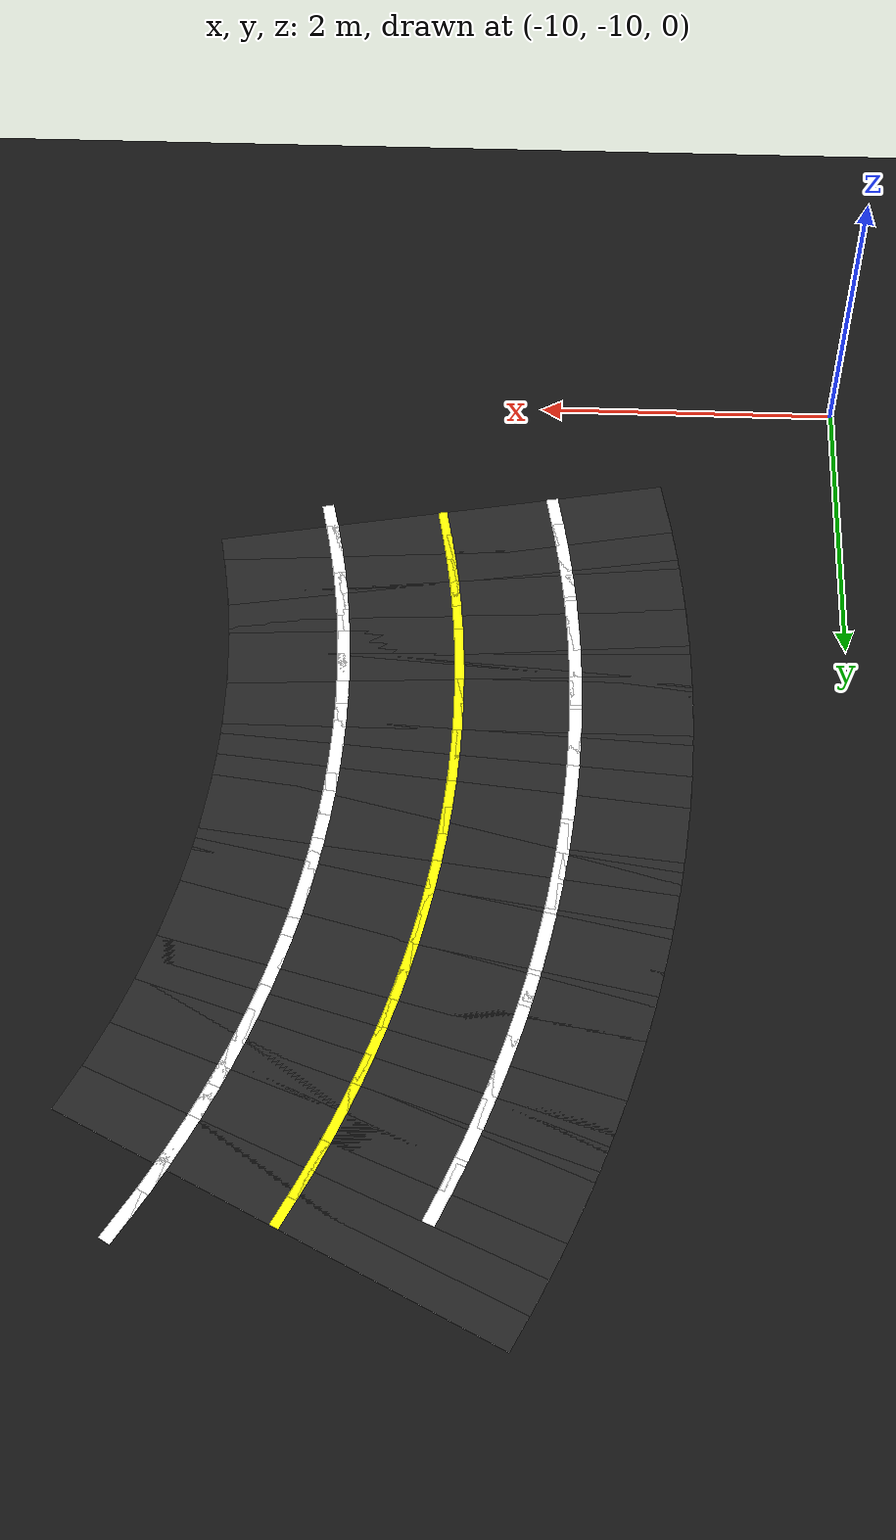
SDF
<sdf version="1.6">
 <world name="figure8_world">
  <model name="ground_plane">
   <static>true</static>
   <link name="link">
    <collision name="collision">
     <geometry><plane><normal>0 0 1</normal><size>120 120</size></plane></geometry>
    </collision>
    <visual name="visual">
     <geometry><plane><normal>0 0 1</normal><size>120 120</size></plane></geometry>
     <material><ambient>0.08 0.08 0.08 1</ambient><diffuse>0.08 0.08 0.08 1</diffuse></material>
    </visual>
   </link>
  </model>
  <model name="seg_01206">
   <static>true</static>
   <pose>-6.6025 -8.9034 0.0030 0 0 1.7802</pose>
   <link name="link">
    <collision name="collision"><geometry><box><size>0.4000 0.0800 0.002</size></box></geometry></collision>
    <visual name="visual">
     <geometry><box><size>0.4000 0.0800 0.002</size></box></geometry>
     <material><ambient>1 1 1 1</ambient><diffuse>1 1 1 1</diffuse></material>
    </visual>
   </link>
  </model>
  <model name="seg_01208">
   <static>true</static>
   <pose>-7.3744 -8.8668 0.0010 0 0 1.7541</pose>
   <link name="link">
    <collision name="collision"><geometry><box><size>0.4000 3.0000 0.002</size></box></geometry></collision>
    <visual name="visual">
     <geometry><box><size>0.4000 3.0000 0.002</size></box></geometry>
     <material><ambient>0.14 0.14 0.14 1</ambient><diffuse>0.14 0.14 0.14 1</diffuse></material>
    </visual>
   </link>
  </model>
  <model name="seg_01209">
   <static>true</static>
   <pose>-8.1119 -9.0034 0.0030 0 0 1.7541</pose>
   <link name="link">
    <collision name="collision"><geometry><box><size>0.4000 0.0800 0.002</size></box></geometry></collision>
    <visual name="visual">
     <geometry><box><size>0.4000 0.0800 0.002</size></box></geometry>
     <material><ambient>1 1 1 1</ambient><diffuse>1 1 1 1</diffuse></material>
    </visual>
   </link>
  </model>
  <model name="seg_01210">
   <static>true</static>
   <pose>-6.6370 -8.7301 0.0030 0 0 1.7541</pose>
   <link name="link">
    <collision name="collision"><geometry><box><size>0.4000 0.0800 0.002</size></box></geometry></collision>
    <visual name="visual">
     <geometry><box><size>0.4000 0.0800 0.002</size></box></geometry>
     <material><ambient>1 1 1 1</ambient><diffuse>1 1 1 1</diffuse></material>
    </visual>
   </link>
  </model>
  <model name="seg_01211">
   <static>true</static>
   <pose>-7.3744 -8.8668 0.0030 0 0 1.7541</pose>
   <link name="link">
    <collision name="collision"><geometry><box><size>0.4000 0.0600 0.002</size></box></geometry></collision>
    <visual name="visual">
     <geometry><box><size>0.4000 0.0600 0.002</size></box></geometry>
     <material><ambient>1 1 0 1</ambient><diffuse>1 1 0 1</diffuse></material>
    </visual>
   </link>
  </model>
  <model name="seg_01212">
   <static>true</static>
   <pose>-7.4077 -8.6733 0.0010 0 0 1.7279</pose>
   <link name="link">
    <collision name="collision"><geometry><box><size>0.4000 3.0000 0.002</size></box></geometry></collision>
    <visual name="visual">
     <geometry><box><size>0.4000 3.0000 0.002</size></box></geometry>
     <material><ambient>0.14 0.14 0.14 1</ambient><diffuse>0.14 0.14 0.14 1</diffuse></material>
    </visual>
   </link>
  </model>
  <model name="seg_01213">
   <static>true</static>
   <pose>-8.1484 -8.7906 0.0030 0 0 1.7279</pose>
   <link name="link">
    <collision name="collision"><geometry><box><size>0.4000 0.0800 0.002</size></box></geometry></collision>
    <visual name="visual">
     <geometry><box><size>0.4000 0.0800 0.002</size></box></geometry>
     <material><ambient>1 1 1 1</ambient><diffuse>1 1 1 1</diffuse></material>
    </visual>
   </link>
  </model>
  <model name="seg_01214">
   <static>true</static>
   <pose>-6.6669 -8.5559 0.0030 0 0 1.7279</pose>
   <link name="link">
    <collision name="collision"><geometry><box><size>0.4000 0.0800 0.002</size></box></geometry></collision>
    <visual name="visual">
     <geometry><box><size>0.4000 0.0800 0.002</size></box></geometry>
     <material><ambient>1 1 1 1</ambient><diffuse>1 1 1 1</diffuse></material>
    </visual>
   </link>
  </model>
  <model name="seg_01215">
   <static>true</static>
   <pose>-7.4077 -8.6733 0.0030 0 0 1.7279</pose>
   <link name="link">
    <collision name="collision"><geometry><box><size>0.4000 0.0600 0.002</size></box></geometry></collision>
    <visual name="visual">
     <geometry><box><size>0.4000 0.0600 0.002</size></box></geometry>
     <material><ambient>1 1 0 1</ambient><diffuse>1 1 0 1</diffuse></material>
    </visual>
   </link>
  </model>
  <model name="seg_01216">
   <static>true</static>
   <pose>-7.4358 -8.4789 0.0010 0 0 1.7017</pose>
   <link name="link">
    <collision name="collision"><geometry><box><size>0.4000 3.0000 0.002</size></box></geometry></collision>
    <visual name="visual">
     <geometry><box><size>0.4000 3.0000 0.002</size></box></geometry>
     <material><ambient>0.14 0.14 0.14 1</ambient><diffuse>0.14 0.14 0.14 1</diffuse></material>
    </visual>
   </link>
  </model>
  <model name="seg_01217">
   <static>true</static>
   <pose>-8.1794 -8.5768 0.0030 0 0 1.7017</pose>
   <link name="link">
    <collision name="collision"><geometry><box><size>0.4000 0.0800 0.002</size></box></geometry></collision>
    <visual name="visual">
     <geometry><box><size>0.4000 0.0800 0.002</size></box></geometry>
     <material><ambient>1 1 1 1</ambient><diffuse>1 1 1 1</diffuse></material>
    </visual>
   </link>
  </model>
  <model name="seg_01218">
   <static>true</static>
   <pose>-6.6923 -8.3811 0.0030 0 0 1.7017</pose>
   <link name="link">
    <collision name="collision"><geometry><box><size>0.4000 0.0800 0.002</size></box></geometry></collision>
    <visual name="visual">
     <geometry><box><size>0.4000 0.0800 0.002</size></box></geometry>
     <material><ambient>1 1 1 1</ambient><diffuse>1 1 1 1</diffuse></material>
    </visual>
   </link>
  </model>
  <model name="seg_01219">
   <static>true</static>
   <pose>-7.4358 -8.4789 0.0030 0 0 1.7017</pose>
   <link name="link">
    <collision name="collision"><geometry><box><size>0.4000 0.0600 0.002</size></box></geometry></collision>
    <visual name="visual">
     <geometry><box><size>0.4000 0.0600 0.002</size></box></geometry>
     <material><ambient>1 1 0 1</ambient><diffuse>1 1 0 1</diffuse></material>
    </visual>
   </link>
  </model>
  <model name="seg_01220">
   <static>true</static>
   <pose>-7.4589 -8.2840 0.0010 0 0 1.6755</pose>
   <link name="link">
    <collision name="collision"><geometry><box><size>0.4000 3.0000 0.002</size></box></geometry></collision>
    <visual name="visual">
     <geometry><box><size>0.4000 3.0000 0.002</size></box></geometry>
     <material><ambient>0.14 0.14 0.14 1</ambient><diffuse>0.14 0.14 0.14 1</diffuse></material>
    </visual>
   </link>
  </model>
  <model name="seg_01221">
   <static>true</static>
   <pose>-8.2048 -8.3624 0.0030 0 0 1.6755</pose>
   <link name="link">
    <collision name="collision"><geometry><box><size>0.4000 0.0800 0.002</size></box></geometry></collision>
    <visual name="visual">
     <geometry><box><size>0.4000 0.0800 0.002</size></box></geometry>
     <material><ambient>1 1 1 1</ambient><diffuse>1 1 1 1</diffuse></material>
    </visual>
   </link>
  </model>
  <model name="seg_01222">
   <static>true</static>
   <pose>-6.7130 -8.2056 0.0030 0 0 1.6755</pose>
   <link name="link">
    <collision name="collision"><geometry><box><size>0.4000 0.0800 0.002</size></box></geometry></collision>
    <visual name="visual">
     <geometry><box><size>0.4000 0.0800 0.002</size></box></geometry>
     <material><ambient>1 1 1 1</ambient><diffuse>1 1 1 1</diffuse></material>
    </visual>
   </link>
  </model>
  <model name="seg_01223">
   <static>true</static>
   <pose>-7.4589 -8.2840 0.0030 0 0 1.6755</pose>
   <link name="link">
    <collision name="collision"><geometry><box><size>0.4000 0.0600 0.002</size></box></geometry></collision>
    <visual name="visual">
     <geometry><box><size>0.4000 0.0600 0.002</size></box></geometry>
     <material><ambient>1 1 0 1</ambient><diffuse>1 1 0 1</diffuse></material>
    </visual>
   </link>
  </model>
  <model name="seg_01224">
   <static>true</static>
   <pose>-7.4769 -8.0884 0.0010 0 0 1.6493</pose>
   <link name="link">
    <collision name="collision"><geometry><box><size>0.4000 3.0000 0.002</size></box></geometry></collision>
    <visual name="visual">
     <geometry><box><size>0.4000 3.0000 0.002</size></box></geometry>
     <material><ambient>0.14 0.14 0.14 1</ambient><diffuse>0.14 0.14 0.14 1</diffuse></material>
    </visual>
   </link>
  </model>
  <model name="seg_01225">
   <static>true</static>
   <pose>-8.2246 -8.1473 0.0030 0 0 1.6493</pose>
   <link name="link">
    <collision name="collision"><geometry><box><size>0.4000 0.0800 0.002</size></box></geometry></collision>
    <visual name="visual">
     <geometry><box><size>0.4000 0.0800 0.002</size></box></geometry>
     <material><ambient>1 1 1 1</ambient><diffuse>1 1 1 1</diffuse></material>
    </visual>
   </link>
  </model>
  <model name="seg_01226">
   <static>true</static>
   <pose>-6.7292 -8.0296 0.0030 0 0 1.6493</pose>
   <link name="link">
    <collision name="collision"><geometry><box><size>0.4000 0.0800 0.002</size></box></geometry></collision>
    <visual name="visual">
     <geometry><box><size>0.4000 0.0800 0.002</size></box></geometry>
     <material><ambient>1 1 1 1</ambient><diffuse>1 1 1 1</diffuse></material>
    </visual>
   </link>
  </model>
  <model name="seg_01227">
   <static>true</static>
   <pose>-7.4769 -8.0884 0.0030 0 0 1.6493</pose>
   <link name="link">
    <collision name="collision"><geometry><box><size>0.4000 0.0600 0.002</size></box></geometry></collision>
    <visual name="visual">
     <geometry><box><size>0.4000 0.0600 0.002</size></box></geometry>
     <material><ambient>1 1 0 1</ambient><diffuse>1 1 0 1</diffuse></material>
    </visual>
   </link>
  </model>
  <model name="seg_01228">
   <static>true</static>
   <pose>-7.4897 -7.8925 0.0010 0 0 1.6232</pose>
   <link name="link">
    <collision name="collision"><geometry><box><size>0.4000 3.0000 0.002</size></box></geometry></collision>
    <visual name="visual">
     <geometry><box><size>0.4000 3.0000 0.002</size></box></geometry>
     <material><ambient>0.14 0.14 0.14 1</ambient><diffuse>0.14 0.14 0.14 1</diffuse></material>
    </visual>
   </link>
  </model>
  <model name="seg_01229">
   <static>true</static>
   <pose>-8.2387 -7.9318 0.0030 0 0 1.6232</pose>
   <link name="link">
    <collision name="collision"><geometry><box><size>0.4000 0.0800 0.002</size></box></geometry></collision>
    <visual name="visual">
     <geometry><box><size>0.4000 0.0800 0.002</size></box></geometry>
     <material><ambient>1 1 1 1</ambient><diffuse>1 1 1 1</diffuse></material>
    </visual>
   </link>
  </model>
  <model name="seg_01230">
   <static>true</static>
   <pose>-6.7407 -7.8533 0.0030 0 0 1.6232</pose>
   <link name="link">
    <collision name="collision"><geometry><box><size>0.4000 0.0800 0.002</size></box></geometry></collision>
    <visual name="visual">
     <geometry><box><size>0.4000 0.0800 0.002</size></box></geometry>
     <material><ambient>1 1 1 1</ambient><diffuse>1 1 1 1</diffuse></material>
    </visual>
   </link>
  </model>
  <model name="seg_01231">
   <static>true</static>
   <pose>-7.4897 -7.8925 0.0030 0 0 1.6232</pose>
   <link name="link">
    <collision name="collision"><geometry><box><size>0.4000 0.0600 0.002</size></box></geometry></collision>
    <visual name="visual">
     <geometry><box><size>0.4000 0.0600 0.002</size></box></geometry>
     <material><ambient>1 1 0 1</ambient><diffuse>1 1 0 1</diffuse></material>
    </visual>
   </link>
  </model>
  <model name="seg_01232">
   <static>true</static>
   <pose>-7.4974 -7.6963 0.0010 0 0 1.5970</pose>
   <link name="link">
    <collision name="collision"><geometry><box><size>0.4000 3.0000 0.002</size></box></geometry></collision>
    <visual name="visual">
     <geometry><box><size>0.4000 3.0000 0.002</size></box></geometry>
     <material><ambient>0.14 0.14 0.14 1</ambient><diffuse>0.14 0.14 0.14 1</diffuse></material>
    </visual>
   </link>
  </model>
  <model name="seg_01233">
   <static>true</static>
   <pose>-8.2472 -7.7160 0.0030 0 0 1.5970</pose>
   <link name="link">
    <collision name="collision"><geometry><box><size>0.4000 0.0800 0.002</size></box></geometry></collision>
    <visual name="visual">
     <geometry><box><size>0.4000 0.0800 0.002</size></box></geometry>
     <material><ambient>1 1 1 1</ambient><diffuse>1 1 1 1</diffuse></material>
    </visual>
   </link>
  </model>
  <model name="seg_01234">
   <static>true</static>
   <pose>-6.7477 -7.6767 0.0030 0 0 1.5970</pose>
   <link name="link">
    <collision name="collision"><geometry><box><size>0.4000 0.0800 0.002</size></box></geometry></collision>
    <visual name="visual">
     <geometry><box><size>0.4000 0.0800 0.002</size></box></geometry>
     <material><ambient>1 1 1 1</ambient><diffuse>1 1 1 1</diffuse></material>
    </visual>
   </link>
  </model>
  <model name="seg_01235">
   <static>true</static>
   <pose>-7.4974 -7.6963 0.0030 0 0 1.5970</pose>
   <link name="link">
    <collision name="collision"><geometry><box><size>0.4000 0.0600 0.002</size></box></geometry></collision>
    <visual name="visual">
     <geometry><box><size>0.4000 0.0600 0.002</size></box></geometry>
     <material><ambient>1 1 0 1</ambient><diffuse>1 1 0 1</diffuse></material>
    </visual>
   </link>
  </model>
  <model name="seg_01236">
   <static>true</static>
   <pose>-7.5000 -7.5000 0.0010 0 0 1.5708</pose>
   <link name="link">
    <collision name="collision"><geometry><box><size>0.4000 3.0000 0.002</size></box></geometry></collision>
    <visual name="visual">
     <geometry><box><size>0.4000 3.0000 0.002</size></box></geometry>
     <material><ambient>0.14 0.14 0.14 1</ambient><diffuse>0.14 0.14 0.14 1</diffuse></material>
    </visual>
   </link>
  </model>
  <model name="seg_01237">
   <static>true</static>
   <pose>-8.2500 -7.5000 0.0030 0 0 1.5708</pose>
   <link name="link">
    <collision name="collision"><geometry><box><size>0.4000 0.0800 0.002</size></box></geometry></collision>
    <visual name="visual">
     <geometry><box><size>0.4000 0.0800 0.002</size></box></geometry>
     <material><ambient>1 1 1 1</ambient><diffuse>1 1 1 1</diffuse></material>
    </visual>
   </link>
  </model>
  <model name="seg_01238">
   <static>true</static>
   <pose>-6.7500 -7.5000 0.0030 0 0 1.5708</pose>
   <link name="link">
    <collision name="collision"><geometry><box><size>0.4000 0.0800 0.002</size></box></geometry></collision>
    <visual name="visual">
     <geometry><box><size>0.4000 0.0800 0.002</size></box></geometry>
     <material><ambient>1 1 1 1</ambient><diffuse>1 1 1 1</diffuse></material>
    </visual>
   </link>
  </model>
  <model name="seg_01239">
   <static>true</static>
   <pose>-7.5000 -7.5000 0.0030 0 0 1.5708</pose>
   <link name="link">
    <collision name="collision"><geometry><box><size>0.4000 0.0600 0.002</size></box></geometry></collision>
    <visual name="visual">
     <geometry><box><size>0.4000 0.0600 0.002</size></box></geometry>
     <material><ambient>1 1 0 1</ambient><diffuse>1 1 0 1</diffuse></material>
    </visual>
   </link>
  </model>
  <model name="seg_01240">
   <static>true</static>
   <pose>-7.4974 -7.3037 0.0010 0 0 1.5446</pose>
   <link name="link">
    <collision name="collision"><geometry><box><size>0.4000 3.0000 0.002</size></box></geometry></collision>
    <visual name="visual">
     <geometry><box><size>0.4000 3.0000 0.002</size></box></geometry>
     <material><ambient>0.14 0.14 0.14 1</ambient><diffuse>0.14 0.14 0.14 1</diffuse></material>
    </visual>
   </link>
  </model>
  <model name="seg_01241">
   <static>true</static>
   <pose>-8.2472 -7.2840 0.0030 0 0 1.5446</pose>
   <link name="link">
    <collision name="collision"><geometry><box><size>0.4000 0.0800 0.002</size></box></geometry></collision>
    <visual name="visual">
     <geometry><box><size>0.4000 0.0800 0.002</size></box></geometry>
     <material><ambient>1 1 1 1</ambient><diffuse>1 1 1 1</diffuse></material>
    </visual>
   </link>
  </model>
  <model name="seg_01242">
   <static>true</static>
   <pose>-6.7477 -7.3233 0.0030 0 0 1.5446</pose>
   <link name="link">
    <collision name="collision"><geometry><box><size>0.4000 0.0800 0.002</size></box></geometry></collision>
    <visual name="visual">
     <geometry><box><size>0.4000 0.0800 0.002</size></box></geometry>
     <material><ambient>1 1 1 1</ambient><diffuse>1 1 1 1</diffuse></material>
    </visual>
   </link>
  </model>
  <model name="seg_01243">
   <static>true</static>
   <pose>-7.4974 -7.3037 0.0030 0 0 1.5446</pose>
   <link name="link">
    <collision name="collision"><geometry><box><size>0.4000 0.0600 0.002</size></box></geometry></collision>
    <visual name="visual">
     <geometry><box><size>0.4000 0.0600 0.002</size></box></geometry>
     <material><ambient>1 1 0 1</ambient><diffuse>1 1 0 1</diffuse></material>
    </visual>
   </link>
  </model>
  <model name="seg_01244">
   <static>true</static>
   <pose>-7.4897 -7.1075 0.0010 0 0 1.5184</pose>
   <link name="link">
    <collision name="collision"><geometry><box><size>0.4000 3.0000 0.002</size></box></geometry></collision>
    <visual name="visual">
     <geometry><box><size>0.4000 3.0000 0.002</size></box></geometry>
     <material><ambient>0.14 0.14 0.14 1</ambient><diffuse>0.14 0.14 0.14 1</diffuse></material>
    </visual>
   </link>
  </model>
  <model name="seg_01245">
   <static>true</static>
   <pose>-8.2387 -7.0682 0.0030 0 0 1.5184</pose>
   <link name="link">
    <collision name="collision"><geometry><box><size>0.4000 0.0800 0.002</size></box></geometry></collision>
    <visual name="visual">
     <geometry><box><size>0.4000 0.0800 0.002</size></box></geometry>
     <material><ambient>1 1 1 1</ambient><diffuse>1 1 1 1</diffuse></material>
    </visual>
   </link>
  </model>
  <model name="seg_01246">
   <static>true</static>
   <pose>-6.7407 -7.1467 0.0030 0 0 1.5184</pose>
   <link name="link">
    <collision name="collision"><geometry><box><size>0.4000 0.0800 0.002</size></box></geometry></collision>
    <visual name="visual">
     <geometry><box><size>0.4000 0.0800 0.002</size></box></geometry>
     <material><ambient>1 1 1 1</ambient><diffuse>1 1 1 1</diffuse></material>
    </visual>
   </link>
  </model>
  <model name="seg_01247">
   <static>true</static>
   <pose>-7.4897 -7.1075 0.0030 0 0 1.5184</pose>
   <link name="link">
    <collision name="collision"><geometry><box><size>0.4000 0.0600 0.002</size></box></geometry></collision>
    <visual name="visual">
     <geometry><box><size>0.4000 0.0600 0.002</size></box></geometry>
     <material><ambient>1 1 0 1</ambient><diffuse>1 1 0 1</diffuse></material>
    </visual>
   </link>
  </model>
  <model name="seg_01248">
   <static>true</static>
   <pose>-7.4769 -6.9116 0.0010 0 0 1.4923</pose>
   <link name="link">
    <collision name="collision"><geometry><box><size>0.4000 3.0000 0.002</size></box></geometry></collision>
    <visual name="visual">
     <geometry><box><size>0.4000 3.0000 0.002</size></box></geometry>
     <material><ambient>0.14 0.14 0.14 1</ambient><diffuse>0.14 0.14 0.14 1</diffuse></material>
    </visual>
   </link>
  </model>
  <model name="seg_01249">
   <static>true</static>
   <pose>-8.2246 -6.8527 0.0030 0 0 1.4923</pose>
   <link name="link">
    <collision name="collision"><geometry><box><size>0.4000 0.0800 0.002</size></box></geometry></collision>
    <visual name="visual">
     <geometry><box><size>0.4000 0.0800 0.002</size></box></geometry>
     <material><ambient>1 1 1 1</ambient><diffuse>1 1 1 1</diffuse></material>
    </visual>
   </link>
  </model>
  <model name="seg_01250">
   <static>true</static>
   <pose>-6.7292 -6.9704 0.0030 0 0 1.4923</pose>
   <link name="link">
    <collision name="collision"><geometry><box><size>0.4000 0.0800 0.002</size></box></geometry></collision>
    <visual name="visual">
     <geometry><box><size>0.4000 0.0800 0.002</size></box></geometry>
     <material><ambient>1 1 1 1</ambient><diffuse>1 1 1 1</diffuse></material>
    </visual>
   </link>
  </model>
  <model name="seg_01251">
   <static>true</static>
   <pose>-7.4769 -6.9116 0.0030 0 0 1.4923</pose>
   <link name="link">
    <collision name="collision"><geometry><box><size>0.4000 0.0600 0.002</size></box></geometry></collision>
    <visual name="visual">
     <geometry><box><size>0.4000 0.0600 0.002</size></box></geometry>
     <material><ambient>1 1 0 1</ambient><diffuse>1 1 0 1</diffuse></material>
    </visual>
   </link>
  </model>
  <model name="seg_01252">
   <static>true</static>
   <pose>-7.4589 -6.7160 0.0010 0 0 1.4661</pose>
   <link name="link">
    <collision name="collision"><geometry><box><size>0.4000 3.0000 0.002</size></box></geometry></collision>
    <visual name="visual">
     <geometry><box><size>0.4000 3.0000 0.002</size></box></geometry>
     <material><ambient>0.14 0.14 0.14 1</ambient><diffuse>0.14 0.14 0.14 1</diffuse></material>
    </visual>
   </link>
  </model>
  <model name="seg_01253">
   <static>true</static>
   <pose>-8.2048 -6.6376 0.0030 0 0 1.4661</pose>
   <link name="link">
    <collision name="collision"><geometry><box><size>0.4000 0.0800 0.002</size></box></geometry></collision>
    <visual name="visual">
     <geometry><box><size>0.4000 0.0800 0.002</size></box></geometry>
     <material><ambient>1 1 1 1</ambient><diffuse>1 1 1 1</diffuse></material>
    </visual>
   </link>
  </model>
  <model name="seg_01254">
   <static>true</static>
   <pose>-6.7130 -6.7944 0.0030 0 0 1.4661</pose>
   <link name="link">
    <collision name="collision"><geometry><box><size>0.4000 0.0800 0.002</size></box></geometry></collision>
    <visual name="visual">
     <geometry><box><size>0.4000 0.0800 0.002</size></box></geometry>
     <material><ambient>1 1 1 1</ambient><diffuse>1 1 1 1</diffuse></material>
    </visual>
   </link>
  </model>
  <model name="seg_01255">
   <static>true</static>
   <pose>-7.4589 -6.7160 0.0030 0 0 1.4661</pose>
   <link name="link">
    <collision name="collision"><geometry><box><size>0.4000 0.0600 0.002</size></box></geometry></collision>
    <visual name="visual">
     <geometry><box><size>0.4000 0.0600 0.002</size></box></geometry>
     <material><ambient>1 1 0 1</ambient><diffuse>1 1 0 1</diffuse></material>
    </visual>
   </link>
  </model>
  <model name="seg_01256">
   <static>true</static>
   <pose>-7.4358 -6.5211 0.0010 0 0 1.4399</pose>
   <link name="link">
    <collision name="collision"><geometry><box><size>0.4000 3.0000 0.002</size></box></geometry></collision>
    <visual name="visual">
     <geometry><box><size>0.4000 3.0000 0.002</size></box></geometry>
     <material><ambient>0.14 0.14 0.14 1</ambient><diffuse>0.14 0.14 0.14 1</diffuse></material>
    </visual>
   </link>
  </model>
  <model name="seg_01257">
   <static>true</static>
   <pose>-8.1794 -6.4232 0.0030 0 0 1.4399</pose>
   <link name="link">
    <collision name="collision"><geometry><box><size>0.4000 0.0800 0.002</size></box></geometry></collision>
    <visual name="visual">
     <geometry><box><size>0.4000 0.0800 0.002</size></box></geometry>
     <material><ambient>1 1 1 1</ambient><diffuse>1 1 1 1</diffuse></material>
    </visual>
   </link>
  </model>
  <model name="seg_01258">
   <static>true</static>
   <pose>-6.6923 -6.6189 0.0030 0 0 1.4399</pose>
   <link name="link">
    <collision name="collision"><geometry><box><size>0.4000 0.0800 0.002</size></box></geometry></collision>
    <visual name="visual">
     <geometry><box><size>0.4000 0.0800 0.002</size></box></geometry>
     <material><ambient>1 1 1 1</ambient><diffuse>1 1 1 1</diffuse></material>
    </visual>
   </link>
  </model>
  <model name="seg_01259">
   <static>true</static>
   <pose>-7.4358 -6.5211 0.0030 0 0 1.4399</pose>
   <link name="link">
    <collision name="collision"><geometry><box><size>0.4000 0.0600 0.002</size></box></geometry></collision>
    <visual name="visual">
     <geometry><box><size>0.4000 0.0600 0.002</size></box></geometry>
     <material><ambient>1 1 0 1</ambient><diffuse>1 1 0 1</diffuse></material>
    </visual>
   </link>
  </model>
  <model name="seg_01260">
   <static>true</static>
   <pose>-7.4077 -6.3267 0.0010 0 0 1.4137</pose>
   <link name="link">
    <collision name="collision"><geometry><box><size>0.4000 3.0000 0.002</size></box></geometry></collision>
    <visual name="visual">
     <geometry><box><size>0.4000 3.0000 0.002</size></box></geometry>
     <material><ambient>0.14 0.14 0.14 1</ambient><diffuse>0.14 0.14 0.14 1</diffuse></material>
    </visual>
   </link>
  </model>
  <model name="seg_01261">
   <static>true</static>
   <pose>-8.1484 -6.2094 0.0030 0 0 1.4137</pose>
   <link name="link">
    <collision name="collision"><geometry><box><size>0.4000 0.0800 0.002</size></box></geometry></collision>
    <visual name="visual">
     <geometry><box><size>0.4000 0.0800 0.002</size></box></geometry>
     <material><ambient>1 1 1 1</ambient><diffuse>1 1 1 1</diffuse></material>
    </visual>
   </link>
  </model>
  <model name="seg_01262">
   <static>true</static>
   <pose>-6.6669 -6.4441 0.0030 0 0 1.4137</pose>
   <link name="link">
    <collision name="collision"><geometry><box><size>0.4000 0.0800 0.002</size></box></geometry></collision>
    <visual name="visual">
     <geometry><box><size>0.4000 0.0800 0.002</size></box></geometry>
     <material><ambient>1 1 1 1</ambient><diffuse>1 1 1 1</diffuse></material>
    </visual>
   </link>
  </model>
  <model name="seg_01263">
   <static>true</static>
   <pose>-7.4077 -6.3267 0.0030 0 0 1.4137</pose>
   <link name="link">
    <collision name="collision"><geometry><box><size>0.4000 0.0600 0.002</size></box></geometry></collision>
    <visual name="visual">
     <geometry><box><size>0.4000 0.0600 0.002</size></box></geometry>
     <material><ambient>1 1 0 1</ambient><diffuse>1 1 0 1</diffuse></material>
    </visual>
   </link>
  </model>
  <model name="seg_01264">
   <static>true</static>
   <pose>-7.3744 -6.1332 0.0010 0 0 1.3875</pose>
   <link name="link">
    <collision name="collision"><geometry><box><size>0.4000 3.0000 0.002</size></box></geometry></collision>
    <visual name="visual">
     <geometry><box><size>0.4000 3.0000 0.002</size></box></geometry>
     <material><ambient>0.14 0.14 0.14 1</ambient><diffuse>0.14 0.14 0.14 1</diffuse></material>
    </visual>
   </link>
  </model>
  <model name="seg_01265">
   <static>true</static>
   <pose>-8.1119 -5.9966 0.0030 0 0 1.3875</pose>
   <link name="link">
    <collision name="collision"><geometry><box><size>0.4000 0.0800 0.002</size></box></geometry></collision>
    <visual name="visual">
     <geometry><box><size>0.4000 0.0800 0.002</size></box></geometry>
     <material><ambient>1 1 1 1</ambient><diffuse>1 1 1 1</diffuse></material>
    </visual>
   </link>
  </model>
  <model name="seg_01266">
   <static>true</static>
   <pose>-6.6370 -6.2699 0.0030 0 0 1.3875</pose>
   <link name="link">
    <collision name="collision"><geometry><box><size>0.4000 0.0800 0.002</size></box></geometry></collision>
    <visual name="visual">
     <geometry><box><size>0.4000 0.0800 0.002</size></box></geometry>
     <material><ambient>1 1 1 1</ambient><diffuse>1 1 1 1</diffuse></material>
    </visual>
   </link>
  </model>
  <model name="seg_01267">
   <static>true</static>
   <pose>-7.3744 -6.1332 0.0030 0 0 1.3875</pose>
   <link name="link">
    <collision name="collision"><geometry><box><size>0.4000 0.0600 0.002</size></box></geometry></collision>
    <visual name="visual">
     <geometry><box><size>0.4000 0.0600 0.002</size></box></geometry>
     <material><ambient>1 1 0 1</ambient><diffuse>1 1 0 1</diffuse></material>
    </visual>
   </link>
  </model>
  <model name="seg_01268">
   <static>true</static>
   <pose>-7.3361 -5.9407 0.0010 0 0 1.3614</pose>
   <link name="link">
    <collision name="collision"><geometry><box><size>0.4000 3.0000 0.002</size></box></geometry></collision>
    <visual name="visual">
     <geometry><box><size>0.4000 3.0000 0.002</size></box></geometry>
     <material><ambient>0.14 0.14 0.14 1</ambient><diffuse>0.14 0.14 0.14 1</diffuse></material>
    </visual>
   </link>
  </model>
  <model name="seg_01269">
   <static>true</static>
   <pose>-8.0697 -5.7847 0.0030 0 0 1.3614</pose>
   <link name="link">
    <collision name="collision"><geometry><box><size>0.4000 0.0800 0.002</size></box></geometry></collision>
    <visual name="visual">
     <geometry><box><size>0.4000 0.0800 0.002</size></box></geometry>
     <material><ambient>1 1 1 1</ambient><diffuse>1 1 1 1</diffuse></material>
    </visual>
   </link>
  </model>
  <model name="seg_01270">
   <static>true</static>
   <pose>-6.6025 -6.0966 0.0030 0 0 1.3614</pose>
   <link name="link">
    <collision name="collision"><geometry><box><size>0.4000 0.0800 0.002</size></box></geometry></collision>
    <visual name="visual">
     <geometry><box><size>0.4000 0.0800 0.002</size></box></geometry>
     <material><ambient>1 1 1 1</ambient><diffuse>1 1 1 1</diffuse></material>
    </visual>
   </link>
  </model>
  <model name="seg_01271">
   <static>true</static>
   <pose>-7.3361 -5.9407 0.0030 0 0 1.3614</pose>
   <link name="link">
    <collision name="collision"><geometry><box><size>0.4000 0.0600 0.002</size></box></geometry></collision>
    <visual name="visual">
     <geometry><box><size>0.4000 0.0600 0.002</size></box></geometry>
     <material><ambient>1 1 0 1</ambient><diffuse>1 1 0 1</diffuse></material>
    </visual>
   </link>
  </model>
  <model name="seg_01272">
   <static>true</static>
   <pose>-7.2928 -5.7492 0.0010 0 0 1.3352</pose>
   <link name="link">
    <collision name="collision"><geometry><box><size>0.4000 3.0000 0.002</size></box></geometry></collision>
    <visual name="visual">
     <geometry><box><size>0.4000 3.0000 0.002</size></box></geometry>
     <material><ambient>0.14 0.14 0.14 1</ambient><diffuse>0.14 0.14 0.14 1</diffuse></material>
    </visual>
   </link>
  </model>
  <model name="seg_01273">
   <static>true</static>
   <pose>-8.0221 -5.5741 0.0030 0 0 1.3352</pose>
   <link name="link">
    <collision name="collision"><geometry><box><size>0.4000 0.0800 0.002</size></box></geometry></collision>
    <visual name="visual">
     <geometry><box><size>0.4000 0.0800 0.002</size></box></geometry>
     <material><ambient>1 1 1 1</ambient><diffuse>1 1 1 1</diffuse></material>
    </visual>
   </link>
  </model>
  <model name="seg_01274">
   <static>true</static>
   <pose>-6.5635 -5.9242 0.0030 0 0 1.3352</pose>
   <link name="link">
    <collision name="collision"><geometry><box><size>0.4000 0.0800 0.002</size></box></geometry></collision>
    <visual name="visual">
     <geometry><box><size>0.4000 0.0800 0.002</size></box></geometry>
     <material><ambient>1 1 1 1</ambient><diffuse>1 1 1 1</diffuse></material>
    </visual>
   </link>
  </model>
  <model name="seg_01275">
   <static>true</static>
   <pose>-7.2928 -5.7492 0.0030 0 0 1.3352</pose>
   <link name="link">
    <collision name="collision"><geometry><box><size>0.4000 0.0600 0.002</size></box></geometry></collision>
    <visual name="visual">
     <geometry><box><size>0.4000 0.0600 0.002</size></box></geometry>
     <material><ambient>1 1 0 1</ambient><diffuse>1 1 0 1</diffuse></material>
    </visual>
   </link>
  </model>
  <model name="seg_01276">
   <static>true</static>
   <pose>-7.2444 -5.5589 0.0010 0 0 1.3090</pose>
   <link name="link">
    <collision name="collision"><geometry><box><size>0.4000 3.0000 0.002</size></box></geometry></collision>
    <visual name="visual">
     <geometry><box><size>0.4000 3.0000 0.002</size></box></geometry>
     <material><ambient>0.14 0.14 0.14 1</ambient><diffuse>0.14 0.14 0.14 1</diffuse></material>
    </visual>
   </link>
  </model>
  <model name="seg_01277">
   <static>true</static>
   <pose>-7.9689 -5.3647 0.0030 0 0 1.3090</pose>
   <link name="link">
    <collision name="collision"><geometry><box><size>0.4000 0.0800 0.002</size></box></geometry></collision>
    <visual name="visual">
     <geometry><box><size>0.4000 0.0800 0.002</size></box></geometry>
     <material><ambient>1 1 1 1</ambient><diffuse>1 1 1 1</diffuse></material>
    </visual>
   </link>
  </model>
  <model name="seg_01278">
   <static>true</static>
   <pose>-6.5200 -5.7530 0.0030 0 0 1.3090</pose>
   <link name="link">
    <collision name="collision"><geometry><box><size>0.4000 0.0800 0.002</size></box></geometry></collision>
    <visual name="visual">
     <geometry><box><size>0.4000 0.0800 0.002</size></box></geometry>
     <material><ambient>1 1 1 1</ambient><diffuse>1 1 1 1</diffuse></material>
    </visual>
   </link>
  </model>
  <model name="seg_01279">
   <static>true</static>
   <pose>-7.2444 -5.5589 0.0030 0 0 1.3090</pose>
   <link name="link">
    <collision name="collision"><geometry><box><size>0.4000 0.0600 0.002</size></box></geometry></collision>
    <visual name="visual">
     <geometry><box><size>0.4000 0.0600 0.002</size></box></geometry>
     <material><ambient>1 1 0 1</ambient><diffuse>1 1 0 1</diffuse></material>
    </visual>
   </link>
  </model>
  <model name="seg_01280">
   <static>true</static>
   <pose>-7.1911 -5.3699 0.0010 0 0 1.2828</pose>
   <link name="link">
    <collision name="collision"><geometry><box><size>0.4000 3.0000 0.002</size></box></geometry></collision>
    <visual name="visual">
     <geometry><box><size>0.4000 3.0000 0.002</size></box></geometry>
     <material><ambient>0.14 0.14 0.14 1</ambient><diffuse>0.14 0.14 0.14 1</diffuse></material>
    </visual>
   </link>
  </model>
  <model name="seg_01281">
   <static>true</static>
   <pose>-7.9103 -5.1569 0.0030 0 0 1.2828</pose>
   <link name="link">
    <collision name="collision"><geometry><box><size>0.4000 0.0800 0.002</size></box></geometry></collision>
    <visual name="visual">
     <geometry><box><size>0.4000 0.0800 0.002</size></box></geometry>
     <material><ambient>1 1 1 1</ambient><diffuse>1 1 1 1</diffuse></material>
    </visual>
   </link>
  </model>
  <model name="seg_01282">
   <static>true</static>
   <pose>-6.4720 -5.5829 0.0030 0 0 1.2828</pose>
   <link name="link">
    <collision name="collision"><geometry><box><size>0.4000 0.0800 0.002</size></box></geometry></collision>
    <visual name="visual">
     <geometry><box><size>0.4000 0.0800 0.002</size></box></geometry>
     <material><ambient>1 1 1 1</ambient><diffuse>1 1 1 1</diffuse></material>
    </visual>
   </link>
  </model>
  <model name="seg_01283">
   <static>true</static>
   <pose>-7.1911 -5.3699 0.0030 0 0 1.2828</pose>
   <link name="link">
    <collision name="collision"><geometry><box><size>0.4000 0.0600 0.002</size></box></geometry></collision>
    <visual name="visual">
     <geometry><box><size>0.4000 0.0600 0.002</size></box></geometry>
     <material><ambient>1 1 0 1</ambient><diffuse>1 1 0 1</diffuse></material>
    </visual>
   </link>
  </model>
  <model name="seg_01284">
   <static>true</static>
   <pose>-7.1329 -5.1824 0.0010 0 0 1.2566</pose>
   <link name="link">
    <collision name="collision"><geometry><box><size>0.4000 3.0000 0.002</size></box></geometry></collision>
    <visual name="visual">
     <geometry><box><size>0.4000 3.0000 0.002</size></box></geometry>
     <material><ambient>0.14 0.14 0.14 1</ambient><diffuse>0.14 0.14 0.14 1</diffuse></material>
    </visual>
   </link>
  </model>
  <model name="seg_01285">
   <static>true</static>
   <pose>-7.8462 -4.9506 0.0030 0 0 1.2566</pose>
   <link name="link">
    <collision name="collision"><geometry><box><size>0.4000 0.0800 0.002</size></box></geometry></collision>
    <visual name="visual">
     <geometry><box><size>0.4000 0.0800 0.002</size></box></geometry>
     <material><ambient>1 1 1 1</ambient><diffuse>1 1 1 1</diffuse></material>
    </visual>
   </link>
  </model>
  <model name="seg_01286">
   <static>true</static>
   <pose>-6.4196 -5.4141 0.0030 0 0 1.2566</pose>
   <link name="link">
    <collision name="collision"><geometry><box><size>0.4000 0.0800 0.002</size></box></geometry></collision>
    <visual name="visual">
     <geometry><box><size>0.4000 0.0800 0.002</size></box></geometry>
     <material><ambient>1 1 1 1</ambient><diffuse>1 1 1 1</diffuse></material>
    </visual>
   </link>
  </model>
  <model name="seg_01287">
   <static>true</static>
   <pose>-7.1329 -5.1824 0.0030 0 0 1.2566</pose>
   <link name="link">
    <collision name="collision"><geometry><box><size>0.4000 0.0600 0.002</size></box></geometry></collision>
    <visual name="visual">
     <geometry><box><size>0.4000 0.0600 0.002</size></box></geometry>
     <material><ambient>1 1 0 1</ambient><diffuse>1 1 0 1</diffuse></material>
    </visual>
   </link>
  </model>
  <model name="seg_01288">
   <static>true</static>
   <pose>-7.0698 -4.9964 0.0010 0 0 1.2305</pose>
   <link name="link">
    <collision name="collision"><geometry><box><size>0.4000 3.0000 0.002</size></box></geometry></collision>
    <visual name="visual">
     <geometry><box><size>0.4000 3.0000 0.002</size></box></geometry>
     <material><ambient>0.14 0.14 0.14 1</ambient><diffuse>0.14 0.14 0.14 1</diffuse></material>
    </visual>
   </link>
  </model>
  <model name="seg_01289">
   <static>true</static>
   <pose>-7.7768 -4.7461 0.0030 0 0 1.2305</pose>
   <link name="link">
    <collision name="collision"><geometry><box><size>0.4000 0.0800 0.002</size></box></geometry></collision>
    <visual name="visual">
     <geometry><box><size>0.4000 0.0800 0.002</size></box></geometry>
     <material><ambient>1 1 1 1</ambient><diffuse>1 1 1 1</diffuse></material>
    </visual>
   </link>
  </model>
  <model name="seg_01290">
   <static>true</static>
   <pose>-6.3628 -5.2468 0.0030 0 0 1.2305</pose>
   <link name="link">
    <collision name="collision"><geometry><box><size>0.4000 0.0800 0.002</size></box></geometry></collision>
    <visual name="visual">
     <geometry><box><size>0.4000 0.0800 0.002</size></box></geometry>
     <material><ambient>1 1 1 1</ambient><diffuse>1 1 1 1</diffuse></material>
    </visual>
   </link>
  </model>
  <model name="seg_01291">
   <static>true</static>
   <pose>-7.0698 -4.9964 0.0030 0 0 1.2305</pose>
   <link name="link">
    <collision name="collision"><geometry><box><size>0.4000 0.0600 0.002</size></box></geometry></collision>
    <visual name="visual">
     <geometry><box><size>0.4000 0.0600 0.002</size></box></geometry>
     <material><ambient>1 1 0 1</ambient><diffuse>1 1 0 1</diffuse></material>
    </visual>
   </link>
  </model>
  <model name="seg_01292">
   <static>true</static>
   <pose>-7.0019 -4.8122 0.0010 0 0 1.2043</pose>
   <link name="link">
    <collision name="collision"><geometry><box><size>0.4000 3.0000 0.002</size></box></geometry></collision>
    <visual name="visual">
     <geometry><box><size>0.4000 3.0000 0.002</size></box></geometry>
     <material><ambient>0.14 0.14 0.14 1</ambient><diffuse>0.14 0.14 0.14 1</diffuse></material>
    </visual>
   </link>
  </model>
  <model name="seg_01293">
   <static>true</static>
   <pose>-7.7020 -4.5435 0.0030 0 0 1.2043</pose>
   <link name="link">
    <collision name="collision"><geometry><box><size>0.4000 0.0800 0.002</size></box></geometry></collision>
    <visual name="visual">
     <geometry><box><size>0.4000 0.0800 0.002</size></box></geometry>
     <material><ambient>1 1 1 1</ambient><diffuse>1 1 1 1</diffuse></material>
    </visual>
   </link>
  </model>
  <model name="seg_01294">
   <static>true</static>
   <pose>-6.3017 -5.0810 0.0030 0 0 1.2043</pose>
   <link name="link">
    <collision name="collision"><geometry><box><size>0.4000 0.0800 0.002</size></box></geometry></collision>
    <visual name="visual">
     <geometry><box><size>0.4000 0.0800 0.002</size></box></geometry>
     <material><ambient>1 1 1 1</ambient><diffuse>1 1 1 1</diffuse></material>
    </visual>
   </link>
  </model>
  <model name="seg_01295">
   <static>true</static>
   <pose>-7.0019 -4.8122 0.0030 0 0 1.2043</pose>
   <link name="link">
    <collision name="collision"><geometry><box><size>0.4000 0.0600 0.002</size></box></geometry></collision>
    <visual name="visual">
     <geometry><box><size>0.4000 0.0600 0.002</size></box></geometry>
     <material><ambient>1 1 0 1</ambient><diffuse>1 1 0 1</diffuse></material>
    </visual>
   </link>
  </model>
  <model name="seg_01296">
   <static>true</static>
   <pose>-6.9291 -4.6299 0.0010 0 0 1.1781</pose>
   <link name="link">
    <collision name="collision"><geometry><box><size>0.4000 3.0000 0.002</size></box></geometry></collision>
    <visual name="visual">
     <geometry><box><size>0.4000 3.0000 0.002</size></box></geometry>
     <material><ambient>0.14 0.14 0.14 1</ambient><diffuse>0.14 0.14 0.14 1</diffuse></material>
    </visual>
   </link>
  </model>
  <model name="seg_01297">
   <static>true</static>
   <pose>-7.6220 -4.3429 0.0030 0 0 1.1781</pose>
   <link name="link">
    <collision name="collision"><geometry><box><size>0.4000 0.0800 0.002</size></box></geometry></collision>
    <visual name="visual">
     <geometry><box><size>0.4000 0.0800 0.002</size></box></geometry>
     <material><ambient>1 1 1 1</ambient><diffuse>1 1 1 1</diffuse></material>
    </visual>
   </link>
  </model>
  <model name="seg_01298">
   <static>true</static>
   <pose>-6.2362 -4.9169 0.0030 0 0 1.1781</pose>
   <link name="link">
    <collision name="collision"><geometry><box><size>0.4000 0.0800 0.002</size></box></geometry></collision>
    <visual name="visual">
     <geometry><box><size>0.4000 0.0800 0.002</size></box></geometry>
     <material><ambient>1 1 1 1</ambient><diffuse>1 1 1 1</diffuse></material>
    </visual>
   </link>
  </model>
  <model name="seg_01299">
   <static>true</static>
   <pose>-6.9291 -4.6299 0.0030 0 0 1.1781</pose>
   <link name="link">
    <collision name="collision"><geometry><box><size>0.4000 0.0600 0.002</size></box></geometry></collision>
    <visual name="visual">
     <geometry><box><size>0.4000 0.0600 0.002</size></box></geometry>
     <material><ambient>1 1 0 1</ambient><diffuse>1 1 0 1</diffuse></material>
    </visual>
   </link>
  </model>
  <model name="seg_01300">
   <static>true</static>
   <pose>-6.8516 -4.4495 0.0010 0 0 1.1519</pose>
   <link name="link">
    <collision name="collision"><geometry><box><size>0.4000 3.0000 0.002</size></box></geometry></collision>
    <visual name="visual">
     <geometry><box><size>0.4000 3.0000 0.002</size></box></geometry>
     <material><ambient>0.14 0.14 0.14 1</ambient><diffuse>0.14 0.14 0.14 1</diffuse></material>
    </visual>
   </link>
  </model>
  <model name="seg_01301">
   <static>true</static>
   <pose>-7.5368 -4.1444 0.0030 0 0 1.1519</pose>
   <link name="link">
    <collision name="collision"><geometry><box><size>0.4000 0.0800 0.002</size></box></geometry></collision>
    <visual name="visual">
     <geometry><box><size>0.4000 0.0800 0.002</size></box></geometry>
     <material><ambient>1 1 1 1</ambient><diffuse>1 1 1 1</diffuse></material>
    </visual>
   </link>
  </model>
  <model name="seg_01302">
   <static>true</static>
   <pose>-6.1664 -4.7545 0.0030 0 0 1.1519</pose>
   <link name="link">
    <collision name="collision"><geometry><box><size>0.4000 0.0800 0.002</size></box></geometry></collision>
    <visual name="visual">
     <geometry><box><size>0.4000 0.0800 0.002</size></box></geometry>
     <material><ambient>1 1 1 1</ambient><diffuse>1 1 1 1</diffuse></material>
    </visual>
   </link>
  </model>
  <model name="seg_01303">
   <static>true</static>
   <pose>-6.8516 -4.4495 0.0030 0 0 1.1519</pose>
   <link name="link">
    <collision name="collision"><geometry><box><size>0.4000 0.0600 0.002</size></box></geometry></collision>
    <visual name="visual">
     <geometry><box><size>0.4000 0.0600 0.002</size></box></geometry>
     <material><ambient>1 1 0 1</ambient><diffuse>1 1 0 1</diffuse></material>
    </visual>
   </link>
  </model>
  <model name="seg_01304">
   <static>true</static>
   <pose>-6.7694 -4.2712 0.0010 0 0 1.1257</pose>
   <link name="link">
    <collision name="collision"><geometry><box><size>0.4000 3.0000 0.002</size></box></geometry></collision>
    <visual name="visual">
     <geometry><box><size>0.4000 3.0000 0.002</size></box></geometry>
     <material><ambient>0.14 0.14 0.14 1</ambient><diffuse>0.14 0.14 0.14 1</diffuse></material>
    </visual>
   </link>
  </model>
  <model name="seg_01306">
   <static>true</static>
   <pose>-6.0925 -4.5941 0.0030 0 0 1.1257</pose>
   <link name="link">
    <collision name="collision"><geometry><box><size>0.4000 0.0800 0.002</size></box></geometry></collision>
    <visual name="visual">
     <geometry><box><size>0.4000 0.0800 0.002</size></box></geometry>
     <material><ambient>1 1 1 1</ambient><diffuse>1 1 1 1</diffuse></material>
    </visual>
   </link>
  </model>
  <model name="seg_01307">
   <static>true</static>
   <pose>-6.7694 -4.2712 0.0030 0 0 1.1257</pose>
   <link name="link">
    <collision name="collision"><geometry><box><size>0.4000 0.0600 0.002</size></box></geometry></collision>
    <visual name="visual">
     <geometry><box><size>0.4000 0.0600 0.002</size></box></geometry>
     <material><ambient>1 1 0 1</ambient><diffuse>1 1 0 1</diffuse></material>
    </visual>
   </link>
  </model>
  <model name="seg_01308">
   <static>true</static>
   <pose>-6.6825 -4.0951 0.0010 0 0 1.0996</pose>
   <link name="link">
    <collision name="collision"><geometry><box><size>0.4000 3.0000 0.002</size></box></geometry></collision>
    <visual name="visual">
     <geometry><box><size>0.4000 3.0000 0.002</size></box></geometry>
     <material><ambient>0.14 0.14 0.14 1</ambient><diffuse>0.14 0.14 0.14 1</diffuse></material>
    </visual>
   </link>
  </model>
  <model name="seg_01310">
   <static>true</static>
   <pose>-6.0143 -4.4356 0.0030 0 0 1.0996</pose>
   <link name="link">
    <collision name="collision"><geometry><box><size>0.4000 0.0800 0.002</size></box></geometry></collision>
    <visual name="visual">
     <geometry><box><size>0.4000 0.0800 0.002</size></box></geometry>
     <material><ambient>1 1 1 1</ambient><diffuse>1 1 1 1</diffuse></material>
    </visual>
   </link>
  </model>
  <model name="seg_01311">
   <static>true</static>
   <pose>-6.6825 -4.0951 0.0030 0 0 1.0996</pose>
   <link name="link">
    <collision name="collision"><geometry><box><size>0.4000 0.0600 0.002</size></box></geometry></collision>
    <visual name="visual">
     <geometry><box><size>0.4000 0.0600 0.002</size></box></geometry>
     <material><ambient>1 1 0 1</ambient><diffuse>1 1 0 1</diffuse></material>
    </visual>
   </link>
  </model>
  <model name="seg_01314">
   <static>true</static>
   <pose>-5.9320 -4.2792 0.0030 0 0 1.0734</pose>
   <link name="link">
    <collision name="collision"><geometry><box><size>0.4000 0.0800 0.002</size></box></geometry></collision>
    <visual name="visual">
     <geometry><box><size>0.4000 0.0800 0.002</size></box></geometry>
     <material><ambient>1 1 1 1</ambient><diffuse>1 1 1 1</diffuse></material>
    </visual>
   </link>
  </model>
  <model name="seg_01318">
   <static>true</static>
   <pose>-5.8457 -4.1250 0.0030 0 0 1.0472</pose>
   <link name="link">
    <collision name="collision"><geometry><box><size>0.4000 0.0800 0.002</size></box></geometry></collision>
    <visual name="visual">
     <geometry><box><size>0.4000 0.0800 0.002</size></box></geometry>
     <material><ambient>1 1 1 1</ambient><diffuse>1 1 1 1</diffuse></material>
    </visual>
   </link>
  </model>
  <model name="seg_01322">
   <static>true</static>
   <pose>-5.7553 -3.9731 0.0030 0 0 1.0210</pose>
   <link name="link">
    <collision name="collision"><geometry><box><size>0.4000 0.0800 0.002</size></box></geometry></collision>
    <visual name="visual">
     <geometry><box><size>0.4000 0.0800 0.002</size></box></geometry>
     <material><ambient>1 1 1 1</ambient><diffuse>1 1 1 1</diffuse></material>
    </visual>
   </link>
  </model>
 </world>
</sdf>
